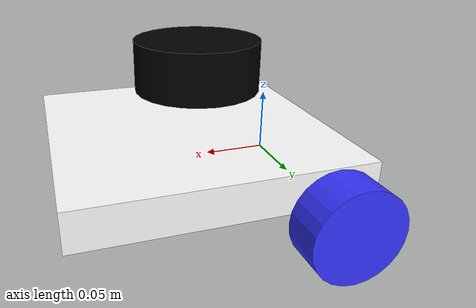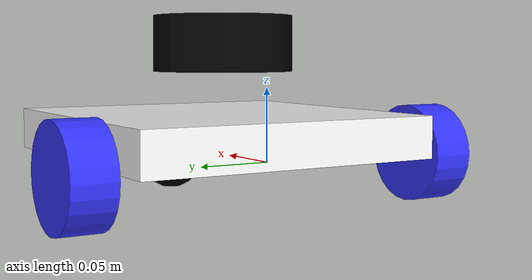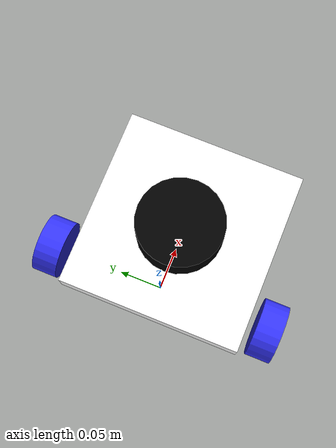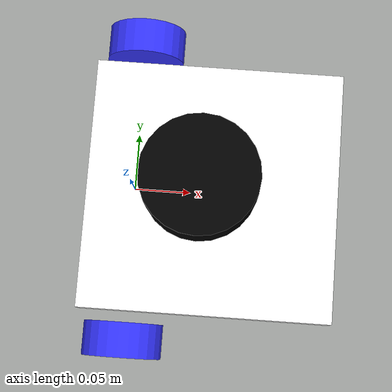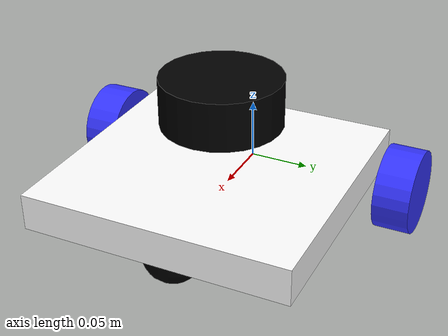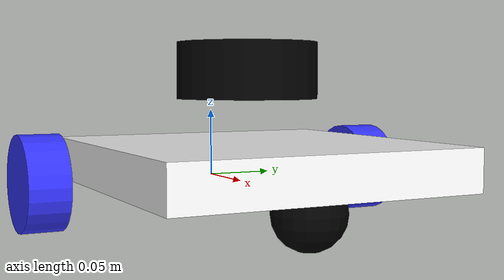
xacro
<?xml version="1.0"?>
<robot xmlns:xacro="http://www.ros.org/wiki/xacro">

    <xacro:include filename="inertial_macros.xacro"/>

    <material name="white">
        <color rgba="1 1 1 1"/>
    </material>

    <material name="orange">
        <color rgba="1 0.3 0.1 1"/>
    </material>

    <material name="blue">
        <color rgba="0.2 0.2 1 1"/>
    </material>

    <material name="black">
        <color rgba="0 0 0 1"/>
    </material>

    <!-- BASE LINK -->
    <link name="base_link"/>

    <!-- CHASSIS LINK -->
    <joint name="chassis_joint" type="fixed">
        <parent link="base_link"/>
        <child link="chassis"/>
        <origin xyz="-0.04 0 0"/>
    </joint>

    <link name="chassis">
        <visual>
            <origin xyz="0.11 0 0.015"/>
            <geometry>
                <box size="0.22 0.22 0.03"/>
            </geometry>
            <material name="white"/>
        </visual>
        <collision>
            <origin xyz="0.11 0 0.015"/>
            <geometry>
                <box size="0.22 0.22 0.03"/>
            </geometry>
        </collision>
        <xacro:inertial_box mass="1.5" x="0.22" y="0.22" z="0.03">
            <origin xyz="0.11 0 0.015" rpy="0 0 0"/>
        </xacro:inertial_box>
    </link>

    <gazebo reference="chassis">
        <material>Gazebo/White</material>
    </gazebo>

    <!-- LEFT WHEEL LINK -->
    <joint name="left_wheel_joint" type="continuous">
        <parent link="base_link"/>
        <child link="left_wheel"/>
        <origin xyz="0 0.135 0" rpy="-${pi/2} 0 0"/>
        <axis xyz="0 0 1"/>
    </joint>

    <link name="left_wheel">
        <visual>
            <geometry>
                <cylinder radius="0.035" length="0.03"/>
            </geometry>
            <material name="blue"/>
        </visual>
        <collision>
            <geometry>
                <cylinder radius="0.035" length="0.03"/>
            </geometry>
        </collision>
        <xacro:inertial_cylinder mass="0.1" length="0.03" radius="0.035">
            <origin xyz="0 0 0" rpy="0 0 0"/>
        </xacro:inertial_cylinder>
    </link>

    <gazebo reference="left_wheel">
        <material>Gazebo/Blue</material>
    </gazebo>

    <transmission name="left_wheel_transmission">
        <type>transmission_interface/SimpleTransmission</type>
        <joint name="left_wheel_joint">
            <hardwareInterface>hardware_interface/VelocityJointInterface</hardwareInterface>
        </joint>
        <actuator name="left_wheel_actuator">
            <mechanicalReduction>7</mechanicalReduction>
            <hardwareInterface>VelocityJointInterface</hardwareInterface>
        </actuator>
    </transmission>

    <!-- RIGHT WHEEL LINK -->
    <joint name="right_wheel_joint" type="continuous">
        <parent link="base_link"/>
        <child link="right_wheel"/>
        <origin xyz="0 -0.135 0" rpy="${pi/2} 0 0"/>
        <axis xyz="0 0 -1"/>
    </joint>

    <link name="right_wheel">
        <visual>
            <geometry>
                <cylinder radius="0.035" length="0.03"/>
            </geometry>
            <material name="blue"/>
        </visual>
        <collision>
            <geometry>
                <cylinder radius="0.035" length="0.03"/>
            </geometry>
        </collision>
        <xacro:inertial_cylinder mass="0.1" length="0.03" radius="0.035">
            <origin xyz="0 0 0" rpy="0 0 0"/>
        </xacro:inertial_cylinder>
    </link>

    <gazebo reference="right_wheel">
        <material>Gazebo/Blue</material>
    </gazebo>

    <transmission name="right_wheel_transmission">
        <type>transmission_interface/SimpleTransmission</type>
        <joint name="right_wheel_joint">
            <hardwareInterface>hardware_interface/VelocityJointInterface</hardwareInterface>
        </joint>
        <actuator name="right_wheel_actuator">
            <mechanicalReduction>7</mechanicalReduction>
            <hardwareInterface>VelocityJointInterface</hardwareInterface>
        </actuator>
    </transmission>

    <!-- CASTER WHEEL LINK -->
    <joint name="caster_wheel_joint" type="fixed">
        <parent link="chassis"/>
        <child link="caster_wheel"/>
        <origin xyz="0.185 0 -0.010"/>
    </joint>

    <link name="caster_wheel">
        <visual>
            <geometry>
                <sphere radius="0.025"/>
            </geometry>
            <material name="black"/>
        </visual>
        <collision>
            <geometry>
                <sphere radius="0.025"/>
            </geometry>
        </collision>
        <xacro:inertial_sphere mass="0.1" radius="0.025">
            <origin xyz="0 0 0" rpy="0 0 0"/>
        </xacro:inertial_sphere>
    </link>

    <gazebo reference="caster_wheel">
        <material>Gazebo/Black</material>
        <mu1 value="0.001"/>
        <mu2 value="0.001"/>
    </gazebo>

    <!-- GAZEBO ROS CONTROL -->
    <gazebo>
        <plugin name="gazebo_ros_control" filename="libgazebo_ros_control.so"/>
    </gazebo>

    <!-- LIDAR SENSOR -->
    <joint name="lidar_joint" type="fixed">
        <parent link="chassis"/>
        <child link="lidar_link"/>
        <origin xyz="0.1 0 0.08" rpy="0 0 0"/>
    </joint>

    <link name="lidar_link">
        <visual>
            <origin xyz="0 0 0" rpy="0 0 0"/>
            <geometry>
                <cylinder radius="0.05" length="0.04"/>
            </geometry>
            <material name="black"/>
        </visual>
        <collision>
            <origin xyz="0 0 0" rpy="0 0 0"/>
            <geometry>
                <cylinder radius="0.05" length="0.04"/>
            </geometry>
        </collision>
        <inertial>
            <origin xyz="0 0 0" rpy="0 0 0"/>
            <mass value="0.3"/>
            <inertia ixx="0.001" ixy="0.0" ixz="0.0" iyy="0.001" iyz="0.0" izz="0.001"/>
        </inertial>
    </link>

    <gazebo reference="lidar_link">
        <sensor type="ray" name="lidar_sensor">
            <pose>0 0 0 0 0 0</pose>
            <visualize>true</visualize>
            <update_rate>10</update_rate>
            <ray>
                <scan>
                    <horizontal>
                        <samples>360</samples>
                        <resolution>1</resolution>
                        <min_angle>-3.1415</min_angle>
                        <max_angle>3.1415</max_angle>
                    </horizontal>
                </scan>
                <range>
                    <min>0.3</min>
                    <max>12</max>
                    <resolution>0.01</resolution>
                </range>
                <noise>
                    <type>gaussian</type>
                    <mean>0.0</mean>
                    <stddev>0.01</stddev>
                </noise>
            </ray>
            <plugin name="gazebo_ros_laser_controller" filename="libgazebo_ros_laser.so">
                <alwaysOn>true</alwaysOn>
                <updateRate>10.0</updateRate>
                <robotNamespace>/</robotNamespace>
                <frameName>lidar_link</frameName>
                <topicName>/scan</topicName>
            </plugin>
        </sensor>
    </gazebo>
</robot>
